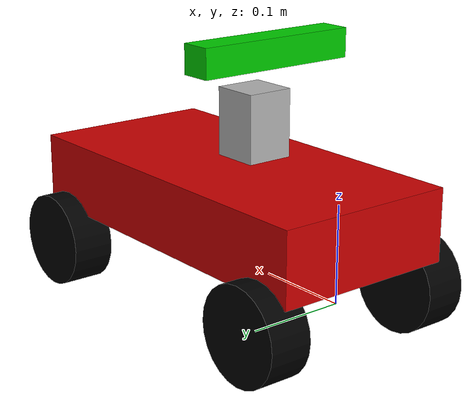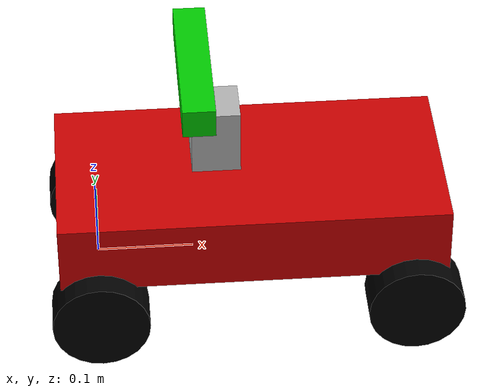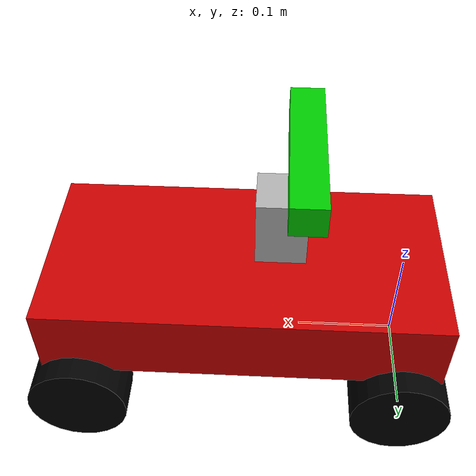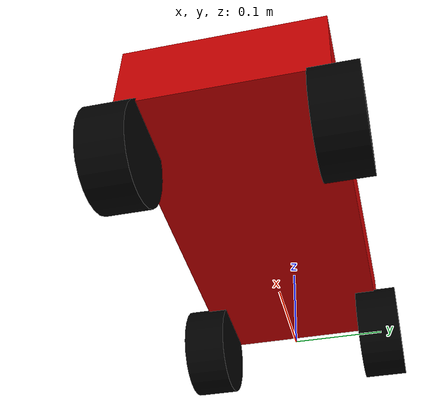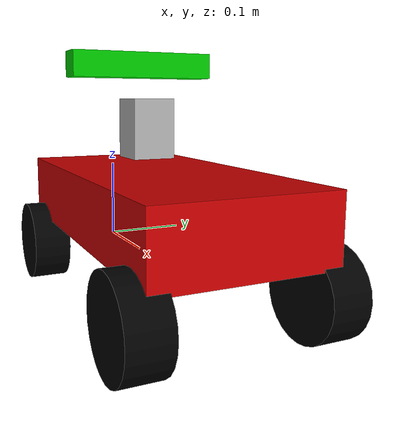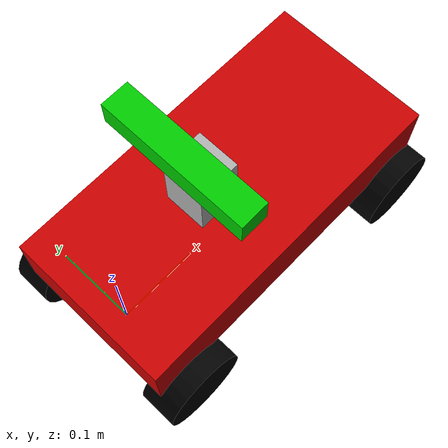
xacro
<?xml version="1.0"?>
<!--robot name="virtual_robot" xmlns:xacro="http://www.ros.org/wiki/xacro"-->
<robot xmlns:xacro="http://ros.org/wiki/xacro" name="car">

  <!-- Global namespace -->
  <xacro:arg name="robot_name" default="rtec-vehicle" />

  <material name="black">
    <color rgba="0.0 0.0 0.0 1.0"/>
  </material>

  <material name="blue">
    <color rgba="0.0 0.0 0.8 1.0"/>
  </material>

  <material name="green">
    <color rgba="0.0 0.8 0.0 1.0"/>
  </material>

  <material name="grey">
    <color rgba="0.2 0.2 0.2 1.0"/>
  </material>

  <material name="red">
    <color rgba="0.8 0.0 0.0 1.0"/>
  </material>

  <!-- Add chassis and it's inertia link -->
  <!--link name="base_footprint"/-->

  <!--link name="base_link"/-->

  <link name="base_link">
    <visual>
      <!--origin xyz="0.46 -0.135 -0.180" rpy="1.57 0 3.14" /-->
      <origin xyz="0.16 0 0.07" rpy="1.57 0 3.14" />
      <geometry>
        <box size="0.4 0.076 0.197" />
      </geometry>
      <material name="red" />
    </visual>
  </link>

  <link name="left_rear_wheel">
    <visual>
      <geometry>
        <cylinder length="0.045" radius="0.05" />
      </geometry>
      <material name="black" />
    </visual>
  </link>

  <link name="right_rear_wheel">
    <visual>
      <geometry>
        <cylinder length="0.045" radius="0.05" />
      </geometry>
      <material name="black" />
    </visual>
  </link>

  <link name="left_front_wheel">
    <visual>
      <geometry>
        <cylinder length="0.045" radius="0.05" />
      </geometry>
      <material name="black" />
    </visual>
  </link>

  <link name="left_steering_hinge">
    <visual>
      <geometry>
        <cylinder length="0.02" radius="0.01" />
      </geometry>
      <material name="grey" />
    </visual>
  </link>

  <link name="right_front_wheel">
    <visual>
      <geometry>
        <cylinder length="0.045" radius="0.05" />
      </geometry>
      <material name="black" />
    </visual>
  </link>

  <link name="right_steering_hinge">
    <visual>
      <geometry>
        <cylinder length="0.02" radius="0.01" />
      </geometry>
      <material name="grey" />
    </visual>
  </link>

  <link name="laser">
    <visual>
      <origin xyz="0 0 0" rpy="0 0 0"/>
      <geometry>
        <box size="0.05 0.05 0.0701"/>
        <material name="blue" />
      </geometry>
    </visual>
  </link>

  <link name="camera">
    <visual>
      <origin xyz="-0.02 0 0.075" rpy="0 0 0"/>
      <geometry>
        <box size="0.033 0.175 0.030"/>
      </geometry>
      <material name="green"/>
    </visual>
  </link>

  <joint name="left_rear_wheel_joint" type="continuous">
    <origin xyz="0 0.1 0" rpy="1.5708 0 0" />
    <parent link="base_link" />
    <child link="left_rear_wheel" />
    <axis xyz="0 0 -1" />
    <limit effort="10" velocity="100" />
  </joint>

  <joint name="right_rear_wheel_joint" type="continuous">
    <origin xyz="0 -0.1 0" rpy="1.5708 0 0" />
    <parent link="base_link" />
    <child link="right_rear_wheel" />
    <axis xyz="0 0 -1" />
    <limit effort="10" velocity="100" />
  </joint>

  <joint name="left_front_wheel_joint" type="continuous">
    <origin xyz="0 0 0" rpy="1.5708 0 0" />
    <parent link="left_steering_hinge" />
    <child link="left_front_wheel" />
    <axis xyz="0 0 -1" />
    <limit effort="10" velocity="100" />
  </joint>

  <joint name="left_steering_hinge_joint" type="revolute">
    <origin xyz="0.325 0.1 0" rpy="0 1.5708 0" />
    <parent link="base_link" />
    <child link="left_steering_hinge" />
    <axis xyz="-1 0 0" />
    <limit lower="-1.0" upper="1.0" effort="10" velocity="100" />
  </joint>

  <joint name="right_front_wheel_joint" type="continuous">
    <origin xyz="0 0 0" rpy="1.5708 0 0" />
    <parent link="right_steering_hinge" />
    <child link="right_front_wheel" />
    <axis xyz="0 0 -1" />
    <limit effort="10" velocity="100"/>
  </joint>

  <joint name="right_steering_hinge_joint" type="revolute">
    <origin xyz="0.325 -0.1 0" rpy="0 1.5708 0" />
    <parent link="base_link" />
    <child link="right_steering_hinge" />
    <axis xyz="-1 0 0" />
    <limit lower="-1.0" upper="1.0" effort="10" velocity="100" />
  </joint>

  <joint name="hokuyo_joint" type="fixed">
    <origin xyz="0.125 0.0 0.155" rpy="0 0 0"/>
    <parent link="base_link" />
    <child link="laser" />
    <axis xyz="0 0 1" />
  </joint>

  <joint name="camera_joint" type="fixed">
    <origin xyz="0.125 0.0 0.155" rpy="0 0 0"/>
    <parent link="base_link" />
    <child link="camera" />
    <axis xyz="0 0 1" />
  </joint>

</robot>
